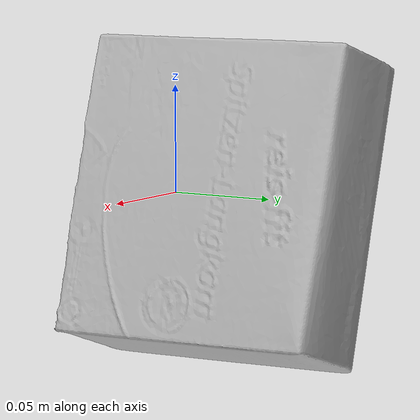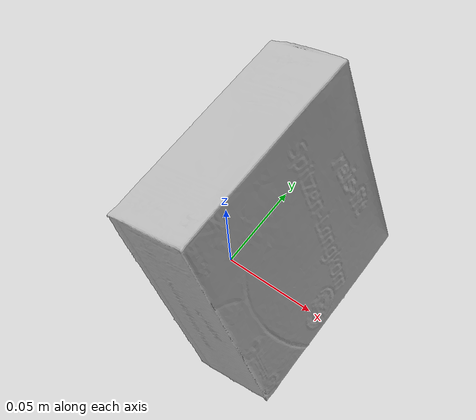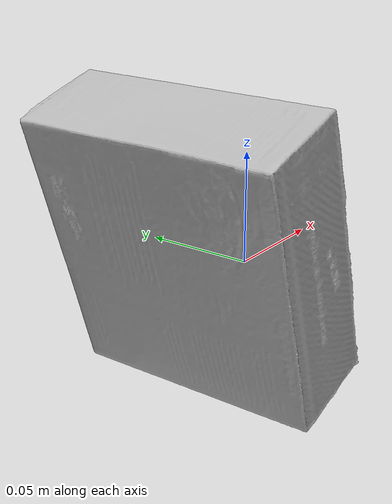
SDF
<?xml version='1.0'?>
<sdf version="1.4">
  <model name="Rice">
    <static>false</static>
    <link name="link">
      <inertial>
        <pose>0.003936014852451706 0.029754874753524913 -0.001985612241240157 -0.042901338909306225 0.30670691386149396 -3.134726989925941</pose>
        <mass>0.09874855707384828</mass>
        <inertia>
          <ixx>0.00030329245948661963</ixx>
          <ixy>2.5942726394193094e-20</ixy>
          <ixz>2.6262201190897666e-20</ixz>
          <iyy>0.00018462930855996692</iyy>
          <iyz>3.364931599102729e-20</iyz>
          <izz>0.00016438468097548716</izz>
        </inertia>
      </inertial>
      <collision name="collision">
        <geometry>
          <mesh>
            <!-- Use a downsampled mesh for collisions -->
            <uri>model:///Rice/Rice_250_collision.obj</uri>
	        </mesh>
        </geometry>
        <surface>
      </surface>
      </collision>
      <visual name="visual">
        <geometry>
          <mesh>
            <uri>model:///Rice/Rice_25k_tex.obj</uri>
	        </mesh>
        </geometry>
        <material>
          <script>
            <uri>model:///Rice/Rice.material</uri>
            <name>Rice</name>
          </script>
        </material>
      </visual>
    </link>
  </model>
</sdf>
